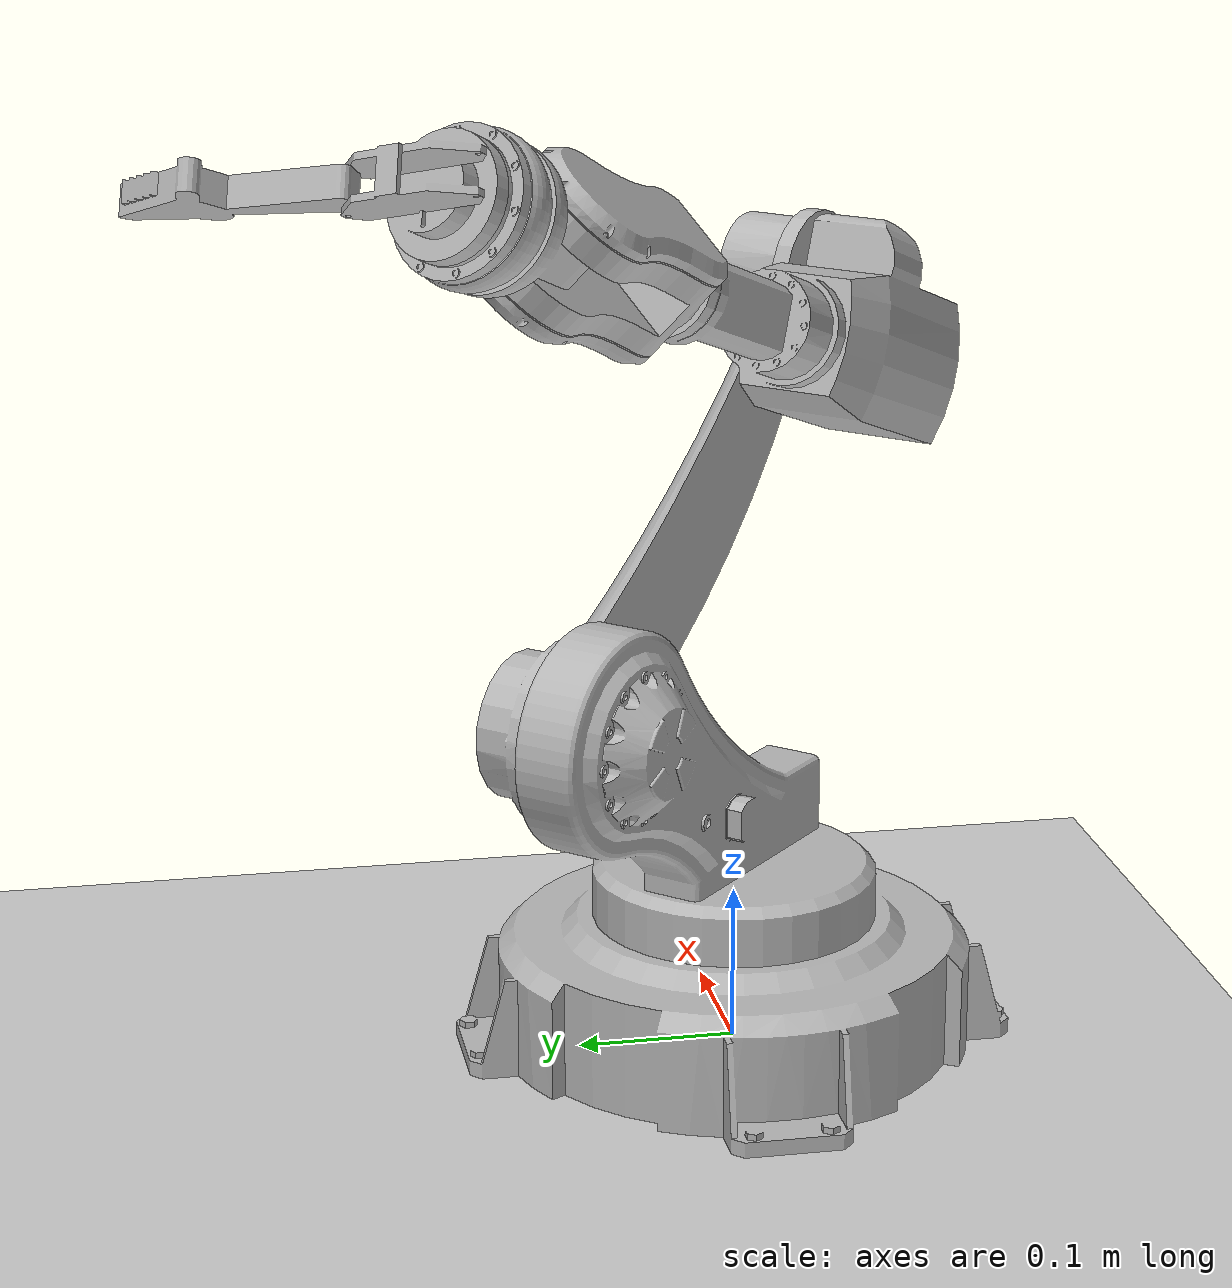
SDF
<?xml version="1.0"?>
<sdf version='1.7'>
  <world name="default">
    <model name="ground_plane">
      <static>true</static>
      <link name="link">
        <collision name="collision">
          <geometry>
            <plane>
              <normal>0 0 1</normal>
              <size>100 100</size>
            </plane>
          </geometry>
          <surface>
            <friction>
              <ode>
                <mu>100</mu>
                <mu2>50</mu2>
              </ode>
            </friction>
          </surface>
        </collision>
        <visual name="visual">
          <cast_shadows>false</cast_shadows>
          <geometry>
            <plane>
              <normal>0 0 1</normal>
              <size>100 100</size>
            </plane>
          </geometry>
          <material>
            <script>
              <uri>file://media/materials/scripts/gazebo.material</uri>
              <name>Gazebo/Grey</name>
            </script>
          </material>
        </visual>
      </link>
    </model>

    <light type="directional" name="sun">
      <cast_shadows>true</cast_shadows>
      <pose>0 0 10 0 0 0</pose>
      <diffuse>0.8 0.8 0.8 1</diffuse>
      <specular>0.2 0.2 0.2 1</specular>
      <attenuation>
        <range>1000</range>
        <constant>0.9</constant>
        <linear>0.01</linear>
        <quadratic>0.001</quadratic>
      </attenuation>
      <direction>-0.5 0.1 -0.9</direction>
    </light>

    <model name='arm2'>
      <script>
        <loop>true</loop>
        <delay_start>1.00000</delay_start>
        <auto_start>true</auto_start>
      </script>
      <link name='base_link'>
        <inertial>
          <pose>-0 0 0.039627 0 -0 0</pose>
          <mass>5.5104</mass>
          <inertia>
            <ixx>0.032533</ixx>
            <ixy>5.7234e-17</ixy>
            <ixz>1.7979e-18</ixz>
            <iyy>0.032533</iyy>
            <iyz>-4.7415e-18</iyz>
            <izz>0.058905</izz>
          </inertia>
        </inertial>
        <collision name='base_link_collision'>
          <pose>0 0 0 0 -0 0</pose>
          <geometry>
            <mesh>
              <scale>1 1 1</scale>
              <uri>model://arm2/meshes/base_link.STL</uri>
            </mesh>
          </geometry>
        </collision>
        <visual name='base_link_visual'>
          <pose>0 0 0 0 -0 0</pose>
          <geometry>
            <mesh>
              <scale>1 1 1</scale>
              <uri>model://arm2/meshes/base_link.STL</uri>
            </mesh>
          </geometry>
        </visual>
      </link>
      <joint name='joint1' type='revolute'>
        <pose relative_to='base_link'>0 0 0.085 1.5708 -0 -0.74673</pose>
        <parent>base_link</parent>
        <child>link1</child>
        <axis>
          <xyz>0 1 0</xyz>
          <limit>
            <lower>-1e+16</lower>
            <upper>1e+16</upper>
          </limit>
          <dynamics>
            <spring_reference>0</spring_reference>
            <spring_stiffness>0</spring_stiffness>
          </dynamics>
        </axis>
      </joint>
      <link name='link1'>
        <pose relative_to='joint1'>0 0 0 0 -0 0</pose>
        <inertial>
          <pose>-0.056315 0.081396 0.002397 0 -0 0</pose>
          <mass>2.2549</mass>
          <inertia>
            <ixx>0.011608</ixx>
            <ixy>0.0088797</ixy>
            <ixz>0.00040169</ixz>
            <iyy>0.01588</iyy>
            <iyz>-0.00035105</iyz>
            <izz>0.023156</izz>
          </inertia>
        </inertial>
        <collision name='link1_collision'>
          <pose>0 0 0 0 -0 0</pose>
          <geometry>
            <mesh>
              <scale>1 1 1</scale>
              <uri>model://arm2/meshes/link1.STL</uri>
            </mesh>
          </geometry>
        </collision>
        <visual name='link1_visual'>
          <pose>0 0 0 0 -0 0</pose>
          <geometry>
            <mesh>
              <scale>1 1 1</scale>
              <uri>model://arm2/meshes/link1.STL</uri>
            </mesh>
          </geometry>
        </visual>
      </link>
      <joint name='joint2' type='revolute'>
        <pose relative_to='link1'>-0.15 0.16 0 -1.5708 -0 -2.4278</pose>
        <parent>link1</parent>
        <child>link2</child>
        <axis>
          <xyz>0 1 0</xyz>
          <limit>
            <lower>-1e+16</lower>
            <upper>1e+16</upper>
          </limit>
          <dynamics>
            <spring_reference>0</spring_reference>
            <spring_stiffness>0</spring_stiffness>
          </dynamics>
        </axis>
      </joint>
      <link name='link2'>
        <pose relative_to='joint2'>0 0 0 0 -0 0</pose>
        <inertial>
          <pose>-0.142664 0.035223 0.00806 0 -0 0</pose>
          <mass>0.920714</mass>
          <inertia>
            <ixx>0.000614867</ixx>
            <ixy>-7.16276e-05</ixy>
            <ixz>0.000152423</ixz>
            <iyy>0.0182053</iyy>
            <iyz>3.03732e-05</iyz>
            <izz>0.0178613</izz>
          </inertia>
        </inertial>
        <collision name='link2_collision'>
          <pose>0 0 0 0 -0 0</pose>
          <geometry>
            <mesh>
              <scale>1 1 1</scale>
              <uri>model://arm2/meshes/link2.STL</uri>
            </mesh>
          </geometry>
        </collision>
        <visual name='link2_visual'>
          <pose>0 0 0 0 -0 0</pose>
          <geometry>
            <mesh>
              <scale>1 1 1</scale>
              <uri>model://arm2/meshes/link2.STL</uri>
            </mesh>
          </geometry>
        </visual>
      </link>
      <joint name='joint3' type='revolute'>
        <pose relative_to='link2'>-0.35 0 0 1.5708 -1.0682 3.14159</pose>
        <parent>link2</parent>
        <child>link3</child>
        <axis>
          <xyz>0 0 1</xyz>
          <limit>
            <lower>-1e+16</lower>
            <upper>1e+16</upper>
          </limit>
          <dynamics>
            <spring_reference>0</spring_reference>
            <spring_stiffness>0</spring_stiffness>
          </dynamics>
        </axis>
      </joint>
      <link name='link3'>
        <pose relative_to='joint3'>0 0 0 0 -0 0</pose>
        <inertial>
          <pose>-0.044617 0.039916 -0.026037 0 -0 0</pose>
          <mass>1.43146</mass>
          <inertia>
            <ixx>0.00186637</ixx>
            <ixy>0.000324747</ixy>
            <ixz>-9.34135e-05</ixz>
            <iyy>0.00807676</iyy>
            <iyz>0.000112859</iyz>
            <izz>0.00844555</izz>
          </inertia>
        </inertial>
        <collision name='link3_collision'>
          <pose>0 0 0 0 -0 0</pose>
          <geometry>
            <mesh>
              <scale>1 1 1</scale>
              <uri>model://arm2/meshes/link3.STL</uri>
            </mesh>
          </geometry>
        </collision>
        <visual name='link3_visual'>
          <pose>0 0 0 0 -0 0</pose>
          <geometry>
            <mesh>
              <scale>1 1 1</scale>
              <uri>model://arm2/meshes/link3.STL</uri>
            </mesh>
          </geometry>
        </visual>
      </link>
      <joint name='joint4' type='revolute'>
        <pose relative_to='link3'>-0.21294 0.045 -0.0275 -0.89378 0 0</pose>
        <parent>link3</parent>
        <child>link4</child>
        <axis>
          <xyz>1 0 0</xyz>
          <limit>
            <lower>-1e+16</lower>
            <upper>1e+16</upper>
          </limit>
          <dynamics>
            <spring_reference>0</spring_reference>
            <spring_stiffness>0</spring_stiffness>
          </dynamics>
        </axis>
      </joint>
      <link name='link4'>
        <pose relative_to='joint4'>0 0 0 0 -0 0</pose>
        <inertial>
          <pose>-0.104023 0 0 0 -0 0</pose>
          <mass>0.581435</mass>
          <inertia>
            <ixx>0.000596524</ixx>
            <ixy>3.01808e-12</ixy>
            <ixz>4.08717e-12</ixz>
            <iyy>0.00158017</iyy>
            <iyz>-2.2891e-10</iyz>
            <izz>0.00140635</izz>
          </inertia>
        </inertial>
        <collision name='link4_collision'>
          <pose>0 0 0 0 -0 0</pose>
          <geometry>
            <mesh>
              <scale>1 1 1</scale>
              <uri>model://arm2/meshes/link4.STL</uri>
            </mesh>
          </geometry>
        </collision>
        <visual name='link4_visual'>
          <pose>0 0 0 0 -0 0</pose>
          <geometry>
            <mesh>
              <scale>1 1 1</scale>
              <uri>model://arm2/meshes/link4.STL</uri>
            </mesh>
          </geometry>
        </visual>
      </link>
      <joint name='joint5' type='revolute'>
        <pose relative_to='link4'>-0.14806 0 0 -0.098993 1.57079 -3.14159</pose>
        <parent>link4</parent>
        <child>link5</child>
        <axis>
          <xyz>1 0 0</xyz>
          <limit>
            <lower>-1e+16</lower>
            <upper>1e+16</upper>
          </limit>
          <dynamics>
            <spring_reference>0</spring_reference>
            <spring_stiffness>0</spring_stiffness>
          </dynamics>
        </axis>
      </joint>
      <link name='link5'>
        <pose relative_to='joint5'>0 0 0 0 -0 0</pose>
        <inertial>
          <pose>-0.000678 0 0.058962 0 -0 0</pose>
          <mass>0.339145</mass>
          <inertia>
            <ixx>0.00035877</ixx>
            <ixy>1.35525e-20</ixy>
            <ixz>-3.56576e-06</ixz>
            <iyy>0.000355541</iyy>
            <iyz>-1.28749e-19</iyz>
            <izz>0.000248853</izz>
          </inertia>
        </inertial>
        <collision name='link5_collision'>
          <pose>0 0 0 0 -0 0</pose>
          <geometry>
            <mesh>
              <scale>1 1 1</scale>
              <uri>model://arm2/meshes/link5.STL</uri>
            </mesh>
          </geometry>
        </collision>
        <visual name='link5_visual'>
          <pose>0 0 0 0 -0 0</pose>
          <geometry>
            <mesh>
              <scale>1 1 1</scale>
              <uri>model://arm2/meshes/link5.STL</uri>
            </mesh>
          </geometry>
        </visual>
      </link>
      <joint name='joint6' type='revolute'>
        <pose relative_to='link5'>-0.0005 0 0.068288 -2.45515 1.57079 -3.14159</pose>
        <parent>link5</parent>
        <child>link6</child>
        <axis>
          <xyz>1 0 0</xyz>
          <limit>
            <lower>-1e+16</lower>
            <upper>1e+16</upper>
          </limit>
          <dynamics>
            <spring_reference>0</spring_reference>
            <spring_stiffness>0</spring_stiffness>
          </dynamics>
        </axis>
      </joint>
      <link name='link6'>
        <pose relative_to='joint6'>0 0 0 0 -0 0</pose>
        <inertial>
          <pose>-0.041997 -0 0 0 -0 0</pose>
          <mass>0.0762575</mass>
          <inertia>
            <ixx>3.99526e-05</ixx>
            <ixy>-9.52912e-21</ixy>
            <ixz>-1.86347e-20</ixz>
            <iyy>3.7956e-05</iyy>
            <iyz>6.35275e-21</iyz>
            <izz>3.20288e-05</izz>
          </inertia>
        </inertial>
        <collision name='link6_collision'>
          <pose>0 0 0 0 -0 0</pose>
          <geometry>
            <mesh>
              <scale>1 1 1</scale>
              <uri>model://arm2/meshes/link6.STL</uri>
            </mesh>
          </geometry>
        </collision>
        <visual name='link6_visual'>
          <pose>0 0 0 0 -0 0</pose>
          <geometry>
            <mesh>
              <scale>1 1 1</scale>
              <uri>model://arm2/meshes/link6.STL</uri>
            </mesh>
          </geometry>
        </visual>
      </link>
      <joint name='joint7' type='revolute'>
        <pose relative_to='link6'>-0.059344 0 -0.040132 1.35233 -0 1.5708</pose>
        <parent>link6</parent>
        <child>link7</child>
        <axis>
          <xyz>1 0 0</xyz>
          <limit>
            <lower>-1e+16</lower>
            <upper>1e+16</upper>
          </limit>
          <dynamics>
            <spring_reference>0</spring_reference>
            <spring_stiffness>0</spring_stiffness>
          </dynamics>
        </axis>
      </joint>
      <link name='link7'>
        <pose relative_to='joint7'>0 0 0 0 -0 0</pose>
        <inertial>
          <pose>-0.000172 -0.047794 -0.035727 0 -0 0</pose>
          <mass>0.0459846</mass>
          <inertia>
            <ixx>6.09316e-05</ixx>
            <ixy>-1.06736e-07</ixy>
            <ixz>-4.5174e-08</ixz>
            <iyy>1.95971e-05</iyy>
            <iyz>-2.31067e-05</iyz>
            <izz>4.38592e-05</izz>
          </inertia>
        </inertial>
        <collision name='link7_collision'>
          <pose>0 0 0 0 -0 0</pose>
          <geometry>
            <mesh>
              <scale>1 1 1</scale>
              <uri>model://arm2/meshes/link7.STL</uri>
            </mesh>
          </geometry>
        </collision>
        <visual name='link7_visual'>
          <pose>0 0 0 0 -0 0</pose>
          <geometry>
            <mesh>
              <scale>1 1 1</scale>
              <uri>model://arm2/meshes/link7.STL</uri>
            </mesh>
          </geometry>
        </visual>
      </link>
      <plugin
        filename="libignition-gazebo-joint-position-controller-system"
        name="ignition::gazebo::systems::JointPositionController">

        <!-- ARM 0 JOINTS -->
        <joint_name>joint1</joint_name>
        <topic>joint1</topic>
        <p_gain>1</p_gain>
        <i_gain>0.1</i_gain>
        <d_gain>0.01</d_gain>
        <i_max>1</i_max>
        <i_min>-1</i_min>
        <cmd_max>1000</cmd_max>
        <cmd_min>-1000</cmd_min>

        <joint_name>joint2</joint_name>
        <topic>joint2</topic>
        <p_gain>1</p_gain>
        <i_gain>0.1</i_gain>
        <d_gain>0.01</d_gain>
        <i_max>1</i_max>
        <i_min>-1</i_min>
        <cmd_max>1000</cmd_max>
        <cmd_min>-1000</cmd_min>

        <joint_name>joint3</joint_name>
        <topic>joint3</topic>
        <p_gain>1</p_gain>
        <i_gain>0.1</i_gain>
        <d_gain>0.01</d_gain>
        <i_max>1</i_max>
        <i_min>-1</i_min>
        <cmd_max>1000</cmd_max>
        <cmd_min>-1000</cmd_min>

        <joint_name>joint4</joint_name>
        <topic>joint4</topic>
        <p_gain>1</p_gain>
        <i_gain>0.1</i_gain>
        <d_gain>0.01</d_gain>
        <i_max>1</i_max>
        <i_min>-1</i_min>
        <cmd_max>1000</cmd_max>
        <cmd_min>-1000</cmd_min>

        <!-- ARM 0 JOINTS -->
        <joint_name>joint5</joint_name>
        <topic>joint5</topic>
        <p_gain>1</p_gain>
        <i_gain>0.1</i_gain>
        <d_gain>0.01</d_gain>
        <i_max>1</i_max>
        <i_min>-1</i_min>
        <cmd_max>1000</cmd_max>
        <cmd_min>-1000</cmd_min>

        <joint_name>joint6</joint_name>
        <topic>joint6</topic>
        <p_gain>1</p_gain>
        <i_gain>0.1</i_gain>
        <d_gain>0.01</d_gain>
        <i_max>1</i_max>
        <i_min>-1</i_min>
        <cmd_max>1000</cmd_max>
        <cmd_min>-1000</cmd_min>

        <joint_name>joint7</joint_name>
        <topic>joint7</topic>
        <p_gain>1</p_gain>
        <i_gain>0.1</i_gain>
        <d_gain>0.01</d_gain>
        <i_max>1</i_max>
        <i_min>-1</i_min>
        <cmd_max>1000</cmd_max>
        <cmd_min>-1000</cmd_min>

      </plugin>
    </model>
    <plugin
      filename="ignition-gazebo-physics-system"
      name="ignition::gazebo::systems::Physics">
    </plugin>
    <plugin
      filename="ignition-gazebo-scene-broadcaster-system"
      name="ignition::gazebo::systems::SceneBroadcaster">
    </plugin>
    <plugin filename="gz-sim-joint-state-publisher-system"
      name="gz::sim::systems::JointStatePublisher">
      <topic>joint_states</topic>
      <joint_name>joint1</joint_name>
      <joint_name>joint2</joint_name>
      <joint_name>joint3</joint_name>
      <joint_name>joint4</joint_name>
      <joint_name>joint5</joint_name>
      <joint_name>joint6</joint_name>
      <joint_name>joint7</joint_name>
    </plugin>
  </world>
</sdf>
